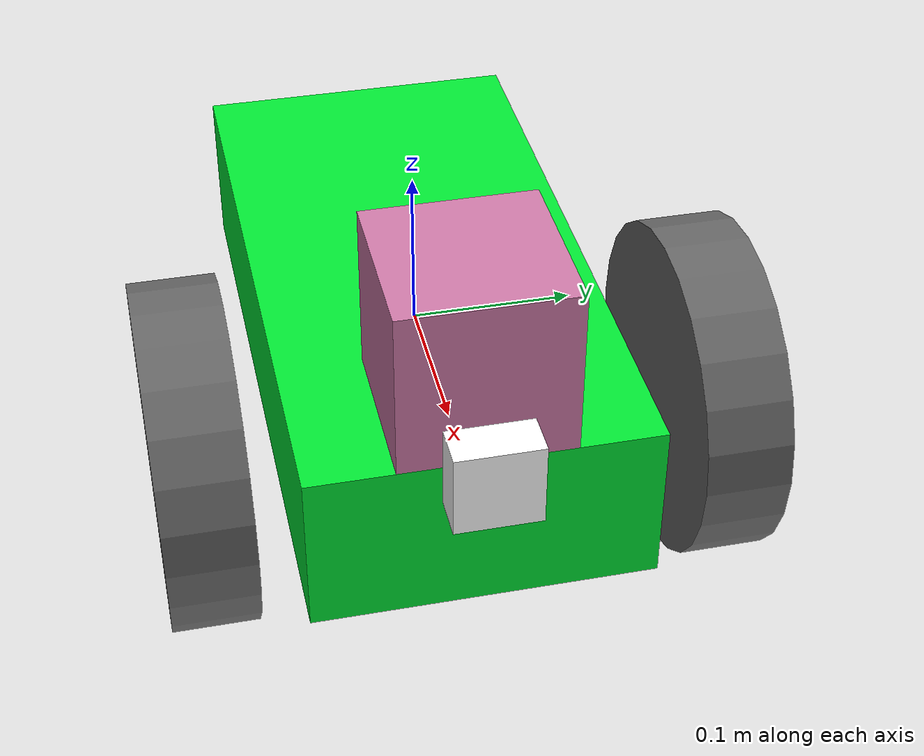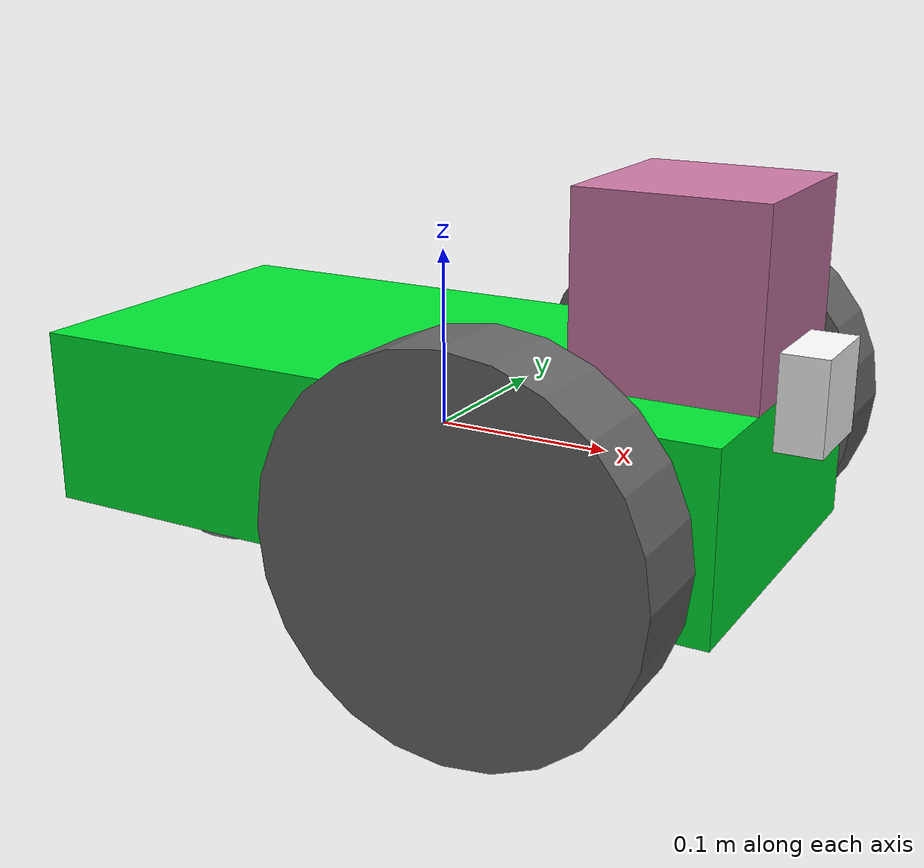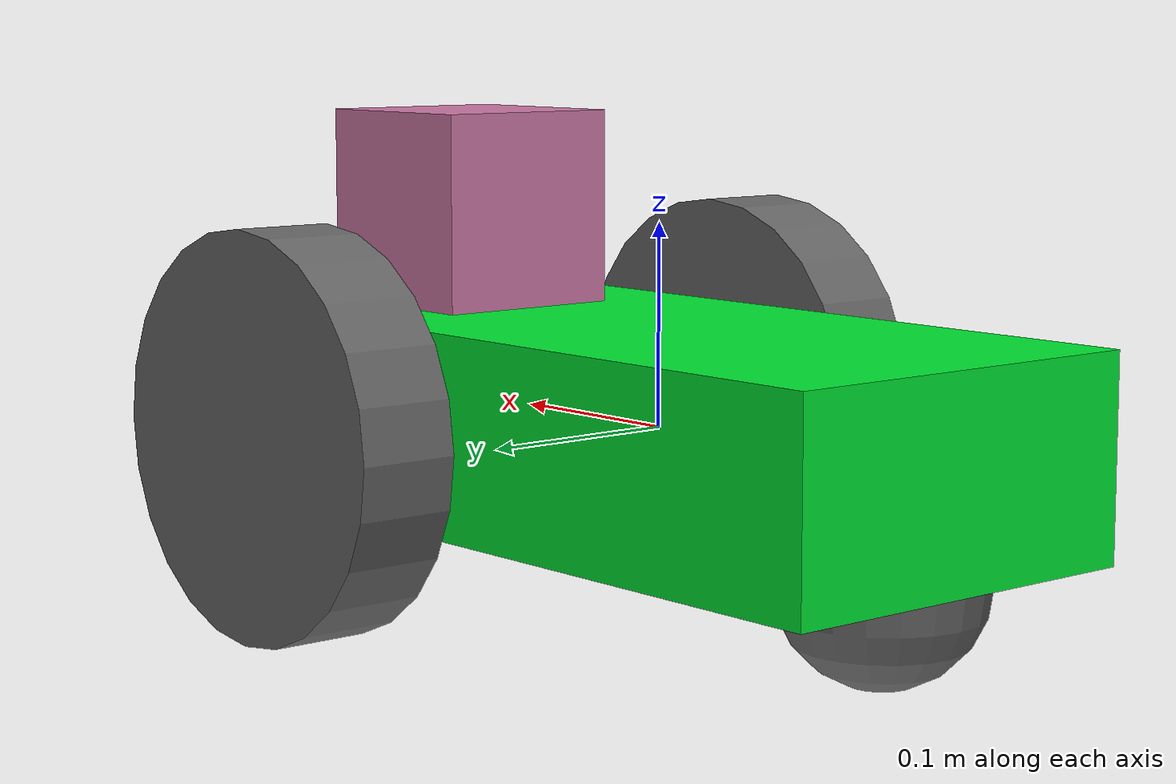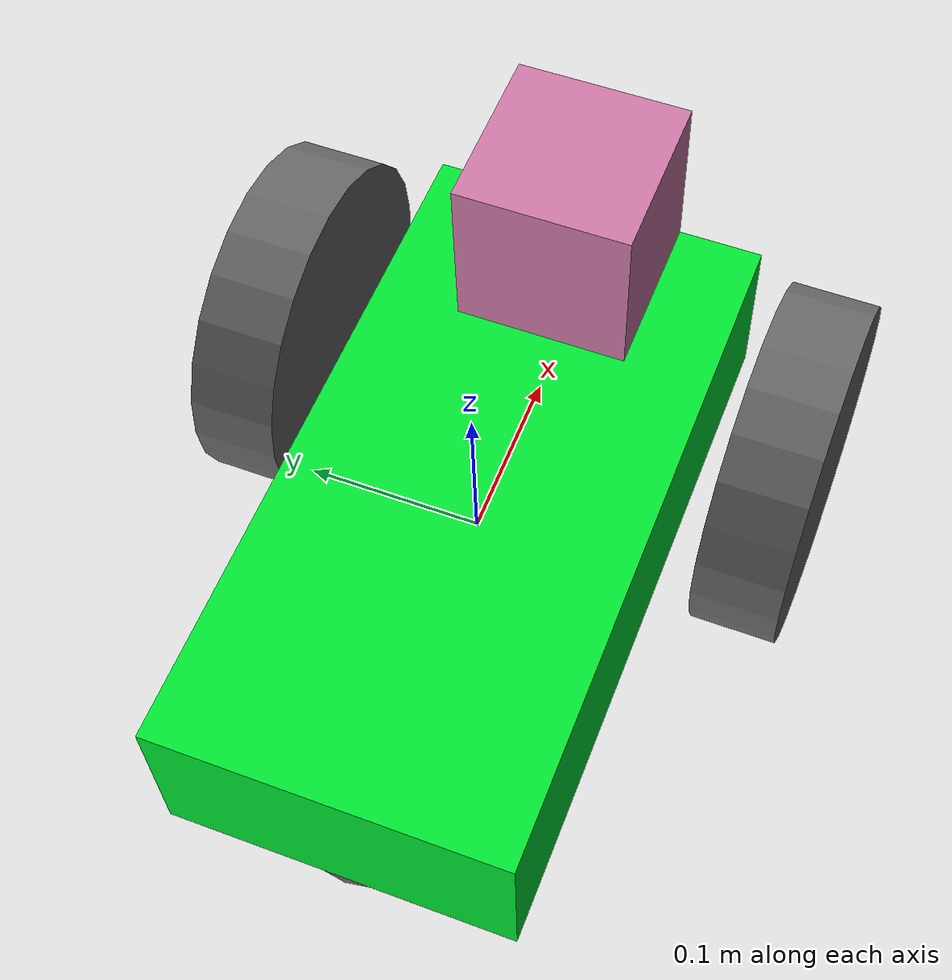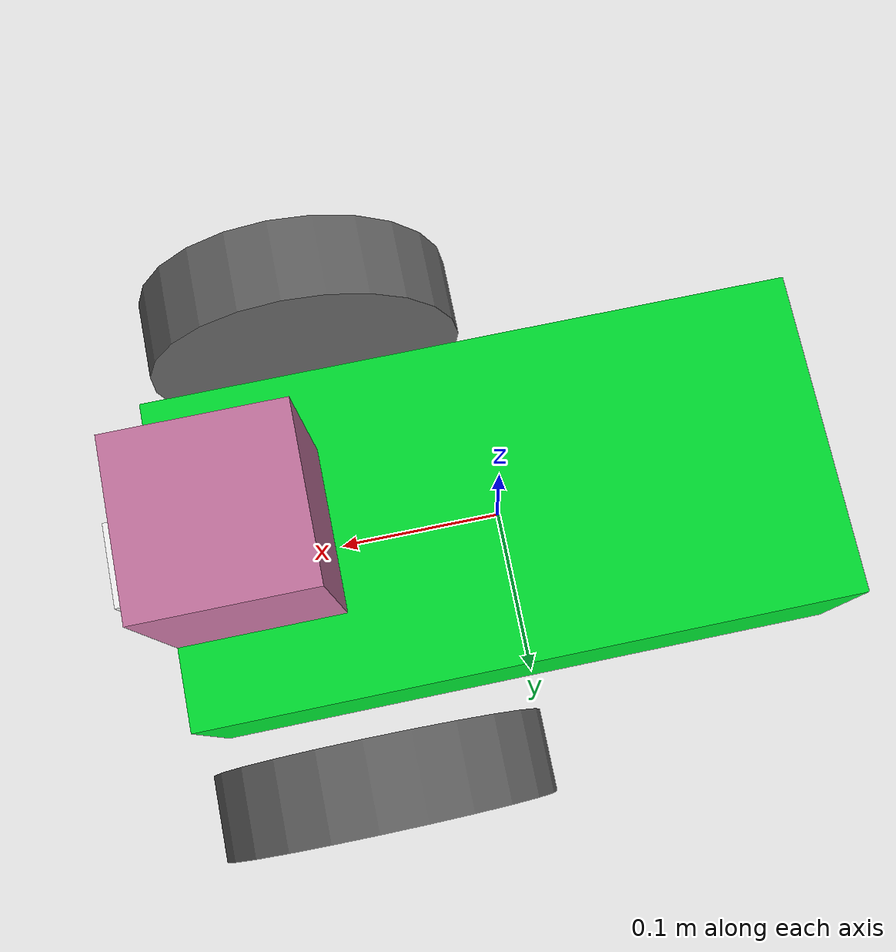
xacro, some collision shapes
<?xml version="1.0"?>
<robot name="my_awesome_robot" xmlns:xacro="http://www.ros.org/wiki/xacro">

  <!-- Parameters            -->

  <!-- Camera -->
  <xacro:property name="cameraSize" value="0.05"/>
  <xacro:property name="cameraMass" value="0.1"/>

  <!-- Wheels -->
  <xacro:property name="wheel_radius" value="0.1"/>
  <xacro:property name="wheel_width"  value="0.05"/>
  <xacro:property name="wheel_x" value="0.1"/>
  <xacro:property name="wheel_y" value="0.15"/>

  <!-- Chassis -->
  <xacro:property name="chassis_x" value="0.4"/>
  <xacro:property name="chassis_y" value="0.2"/>
  <xacro:property name="chassis_z" value="0.1"/>

  <!-- Xacro supports $(find pkg); $(find-pkg-share ...) is NOT a xacro command -->
  <xacro:include filename="$(find my_awesome_robot)/urdf/robot.gazebo"/>

  <!-- Materials -->
  <material name="white"><color rgba="1 1 1 1"/></material>
  <material name="green"><color rgba="0 0.9 0.2 1"/></material>
  <material name="gray"><color rgba="0.4 0.4 0.4 1"/></material>

  <!-- Frames / Links         -->

  <!-- Root link without inertia -->
  <link name="base_link"/>

  <!-- Chassis -->
  <joint name="chassis_joint" type="fixed">
    <parent link="base_link"/>
    <child  link="chassis"/>
    <origin xyz="0 0 0" rpy="0 0 0"/>
  </joint>

  <link name="chassis">
    <visual name="chassis_visual">
      <origin xyz="0 0 0" rpy="0 0 0"/>
      <geometry>
        <box size="${chassis_x} ${chassis_y} ${chassis_z}"/>
      </geometry>
      <material name="green"/>
    </visual>

    <collision name="chassis_collision">
      <origin xyz="0 0 0" rpy="0 0 0"/>
      <geometry>
        <box size="${chassis_x} ${chassis_y} ${chassis_z}"/>
      </geometry>
    </collision>

    <inertial>
      <origin xyz="0 0 0" rpy="0 0 0"/>
      <mass value="10.0"/>
      <inertia ixx="0.4167" ixy="0" ixz="0"
               iyy="1.4167" iyz="0"
               izz="1.6667"/>
    </inertial>
  </link>

  <!-- Caster                 -->

  <link name="caster">
    <visual name="caster_visual">
      <origin xyz="0 0 0" rpy="0 0 0"/>
      <geometry>
        <sphere radius="0.05"/>
      </geometry>
      <material name="gray"/>
    </visual>

    <collision name="caster_collision">
      <origin xyz="0 0 0" rpy="0 0 0"/>
      <geometry>
        <sphere radius="0.05"/>
      </geometry>
    </collision>
  </link>

  <joint name="joint_caster" type="fixed">
    <parent link="chassis"/>
    <child  link="caster"/>
    <origin xyz="-0.15 0 -0.05" rpy="0 0 0"/>
  </joint>

  <!-- Wheels (clean frames)  -->

  <link name="left_wheel">
    <visual name="left_wheel_visual">
      <!-- Cylinder is Z-axis by default; roll by pi/2 about X to align axle with Y -->
      <origin xyz="0 0 0" rpy="${pi/2} 0 0"/>
      <geometry>
        <cylinder radius="${wheel_radius}" length="${wheel_width}"/>
      </geometry>
      <material name="gray"/>
    </visual>

    <collision name="left_wheel_collision">
      <origin xyz="0 0 0" rpy="${pi/2} 0 0"/>
      <geometry>
        <cylinder radius="${wheel_radius}" length="${wheel_width}"/>
      </geometry>
    </collision>

    <inertial>
      <origin xyz="0 0 0" rpy="0 0 0"/>
      <mass value="5"/>
      <inertia ixx="1.0" ixy="0.0" ixz="0.0"
               iyy="1.0" iyz="0.0"
               izz="1.0"/>
    </inertial>
  </link>

  <link name="right_wheel">
    <visual name="right_wheel_visual">
      <origin xyz="0 0 0" rpy="${pi/2} 0 0"/>
      <geometry>
        <cylinder radius="${wheel_radius}" length="${wheel_width}"/>
      </geometry>
      <material name="gray"/>
    </visual>

    <collision name="right_wheel_collision">
      <origin xyz="0 0 0" rpy="${pi/2} 0 0"/>
      <geometry>
        <cylinder radius="${wheel_radius}" length="${wheel_width}"/>
      </geometry>
    </collision>

    <inertial>
      <origin xyz="0 0 0" rpy="0 0 0"/>
      <mass value="5"/>
      <inertia ixx="1.0" ixy="0.0" ixz="0.0"
               iyy="1.0" iyz="0.0"
               izz="1.0"/>
    </inertial>
  </link>

  <!-- Wheel joints -->
  <joint type="continuous" name="left_wheel_hinge">
    <origin xyz="${wheel_x} ${wheel_y} 0" rpy="0 0 0"/>
    <parent link="base_link"/>
    <child  link="left_wheel"/>
    <axis xyz="0 1 0"/>
    <limit effort="100" velocity="100"/>
  </joint>

  <joint type="continuous" name="right_wheel_hinge">
    <origin xyz="${wheel_x} ${-wheel_y} 0" rpy="0 0 0"/>
    <parent link="base_link"/>
    <child  link="right_wheel"/>
    <axis xyz="0 1 0"/>
    <limit effort="100" velocity="100"/>
  </joint>

  <!-- Camera                 -->

  <link name="camera">
    <visual name="camera_visual">
      <origin xyz="0 0 0" rpy="0 0 0"/>
      <geometry>
        <box size="${cameraSize} ${cameraSize} ${cameraSize}"/>
      </geometry>
      <material name="white"/>
    </visual>

    <collision name="camera_collision">
      <origin xyz="0 0 0" rpy="0 0 0"/>
      <geometry>
        <box size="${cameraSize} ${cameraSize} ${cameraSize}"/>
      </geometry>
    </collision>

    <inertial>
      <mass value="${cameraMass}"/>
      <origin xyz="0 0 0" rpy="0 0 0"/>
      <inertia ixx="1e-6" ixy="0" ixz="0" iyy="1e-6" iyz="0" izz="1e-6"/>
    </inertial>
  </link>

  <joint name="camera_joint" type="fixed">
    <parent link="chassis"/>
    <child  link="camera"/>
    <origin xyz="0.2 0 0.05" rpy="0 0 0"/>
  </joint>

  <!-- Hokuyo (visual only)   -->

  <link name="hokuyo">
    <visual name="hokuyo_visual">
      <origin xyz="0 0 0" rpy="0 0 0"/>
      <geometry>
        <mesh filename="file://$(find my_awesome_robot)/urdf/meshes/hokuyo.dae"/>
      </geometry>
    </visual>

    <collision name="hokuyo_collision">
      <origin xyz="0 0 0" rpy="0 0 0"/>
      <geometry>
        <box size="0.1 0.1 0.1"/>
      </geometry>
    </collision>

    <inertial>
      <mass value="1e-5"/>
      <origin xyz="0 0 0" rpy="0 0 0"/>
      <inertia ixx="1e-6" ixy="0" ixz="0" iyy="1e-6" iyz="0" izz="1e-6"/>
    </inertial>
  </link>

  <joint name="hokuyo_joint" type="fixed">
    <parent link="chassis"/>
    <child  link="hokuyo"/>
    <origin xyz="0.15 0 0.10" rpy="0 0 0"/>
  </joint>

</robot>
